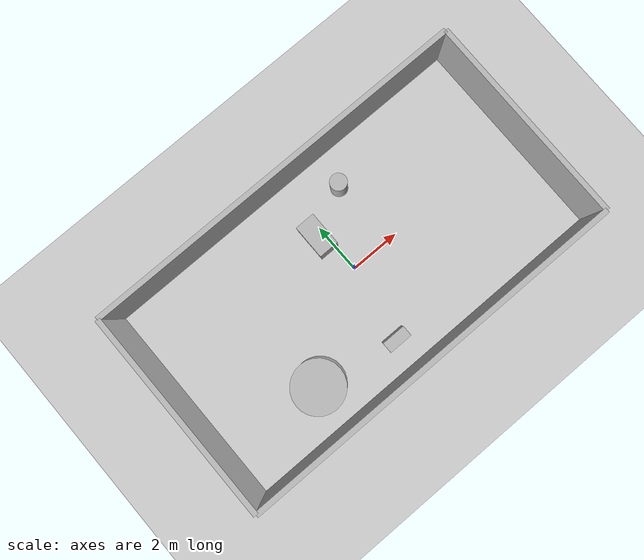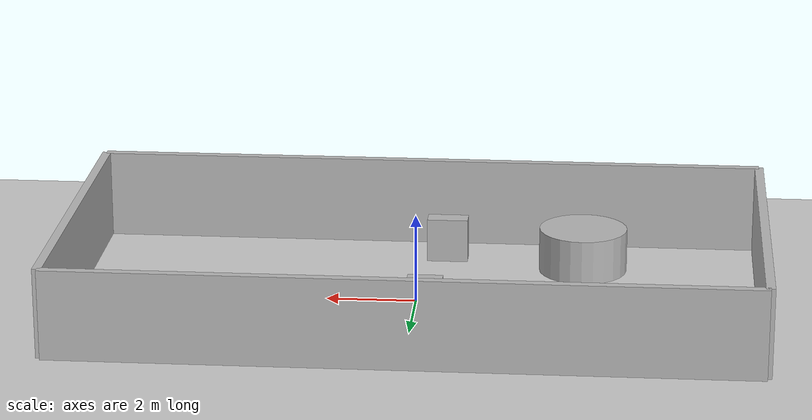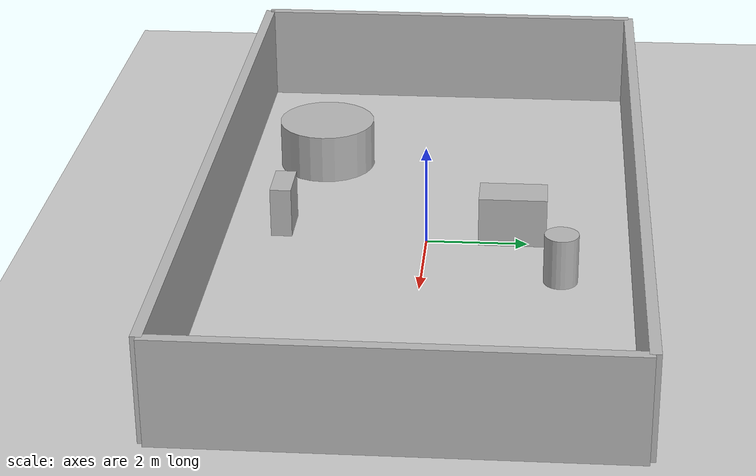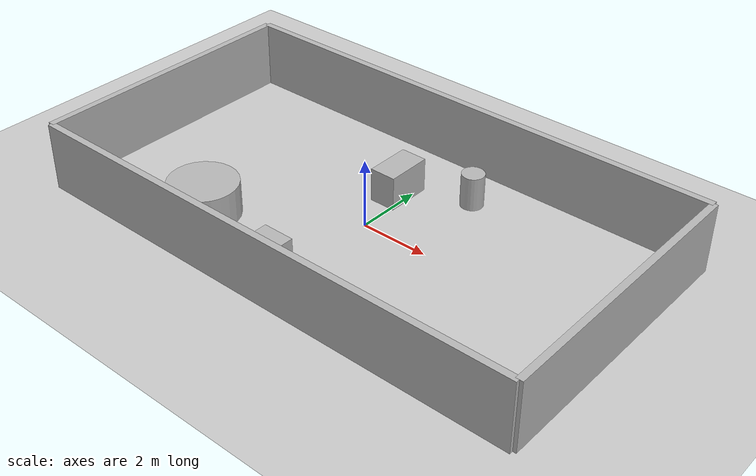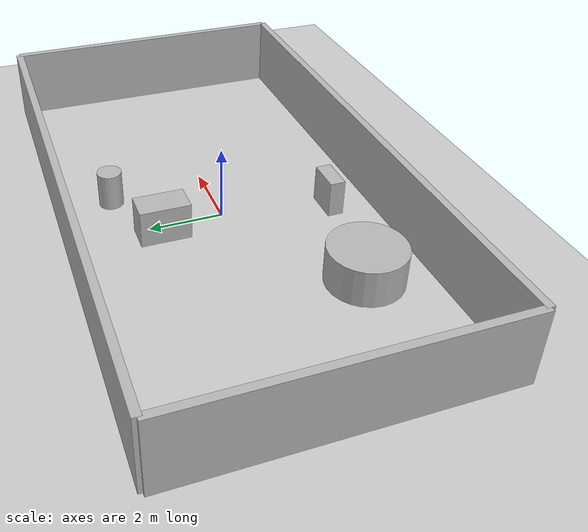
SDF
<?xml version="1.0"?>
<sdf version="1.6">
  <world name="env_94">

    <include><uri>model://ground_plane</uri></include>
    <include><uri>model://sun</uri></include>

    <!-- WALLS -->
    <model name="wall_north"><static>true</static><pose>0 4.116246609696792 1 0 0 0</pose>
      <link name="link"><collision name="collision">
        <geometry><box><size>15.290420225549628 0.2 2</size></box></geometry>
      </collision><visual name="visual">
        <geometry><box><size>15.290420225549628 0.2 2</size></box></geometry>
      </visual></link>
    </model>

    <model name="wall_south"><static>true</static><pose>0 -4.116246609696792 1 0 0 0</pose>
      <link name="link"><collision name="collision">
        <geometry><box><size>15.290420225549628 0.2 2</size></box></geometry>
      </collision><visual name="visual">
        <geometry><box><size>15.290420225549628 0.2 2</size></box></geometry>
      </visual></link>
    </model>

    <model name="wall_east"><static>true</static><pose>7.645210112774814 0 1 0 0 1.57</pose>
      <link name="link"><collision name="collision">
        <geometry><box><size>8.232493219393584 0.2 2</size></box></geometry>
      </collision><visual name="visual">
        <geometry><box><size>8.232493219393584 0.2 2</size></box></geometry>
      </visual></link>
    </model>

    <model name="wall_west"><static>true</static><pose>-7.645210112774814 0 1 0 0 1.57</pose>
      <link name="link"><collision name="collision">
        <geometry><box><size>8.232493219393584 0.2 2</size></box></geometry>
      </collision><visual name="visual">
        <geometry><box><size>8.232493219393584 0.2 2</size></box></geometry>
      </visual></link>
    </model>

    <!-- SENSOR -->

    <model name="lidar_sensor">
      <static>true</static>
      <pose>-2.7077891482488177 -1.9118652562195946 0.4 0 0 0</pose>
      <link name="link">
        <sensor name="lidar" type="ray">
          <pose>0 0 0 0 0 0</pose>
          <visualize>true</visualize>
          <always_on>true</always_on>
          <update_rate>10</update_rate>
          <ray>
            <scan><horizontal>
              <samples>120</samples>
              <resolution>1</resolution>
              <min_angle>-3.14159</min_angle>
              <max_angle>3.14159</max_angle>
            </horizontal></scan>
            <range><min>0.15</min><max>20.0</max><resolution>0.01</resolution></range>
          </ray>
          <plugin name="lidar_plugin" filename="liblidar_plugin.so"/>
        </sensor>
      </link>
    </model>

    <!-- OBSTACLES -->

    <model name="obstacle_0">
      <static>true</static>
      <pose>-3.645572101735786 -2.3675938551884936 0.5 0 0 0</pose>
      <link name="link">
        <collision name="collision">
          <geometry><cylinder><radius>1.0</radius><length>1.0</length></cylinder></geometry>
        </collision>
        <visual name="visual">
          <geometry><cylinder><radius>1.0</radius><length>1.0</length></cylinder></geometry>
        </visual>
      </link>
    </model>

    <model name="obstacle_1">
      <static>true</static>
      <pose>-0.28691244108838276 1.7032239603160377 0.5 0 0 0</pose>
      <link name="link">
        <collision name="collision">
          <geometry><box><size>0.78 1.34 1.0</size></box></geometry>
        </collision>
        <visual name="visual">
          <geometry><box><size>0.78 1.34 1.0</size></box></geometry>
        </visual>
      </link>
    </model>

    <model name="obstacle_2">
      <static>true</static>
      <pose>-0.5115015578723883 -2.892912662806411 0.5 0 0 0</pose>
      <link name="link">
        <collision name="collision">
          <geometry><box><size>0.93 0.42 1.0</size></box></geometry>
        </collision>
        <visual name="visual">
          <geometry><box><size>0.93 0.42 1.0</size></box></geometry>
        </visual>
      </link>
    </model>

    <model name="obstacle_3">
      <static>true</static>
      <pose>1.5277334623732397 2.659690320159199 0.5 0 0 0</pose>
      <link name="link">
        <collision name="collision">
          <geometry><cylinder><radius>0.33</radius><length>1.0</length></cylinder></geometry>
        </collision>
        <visual name="visual">
          <geometry><cylinder><radius>0.33</radius><length>1.0</length></cylinder></geometry>
        </visual>
      </link>
    </model>

  </world>
</sdf>
